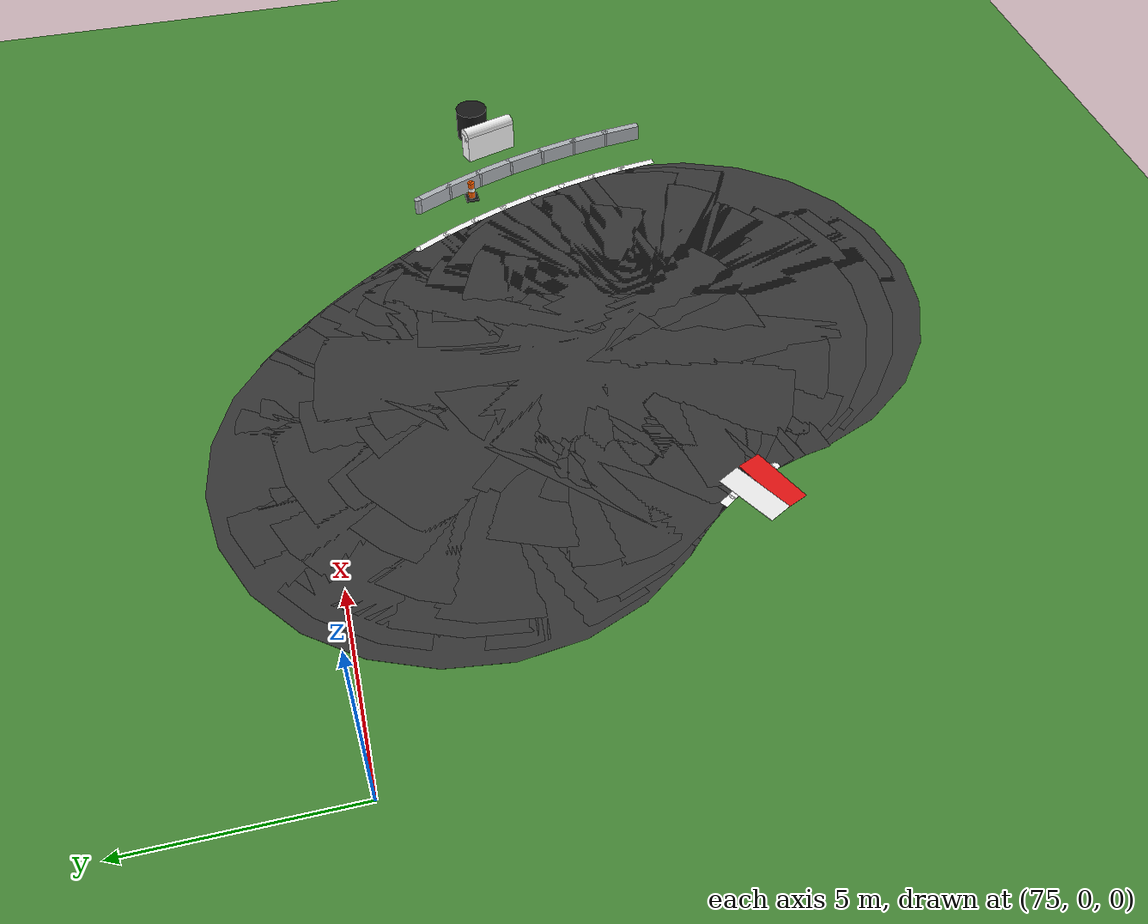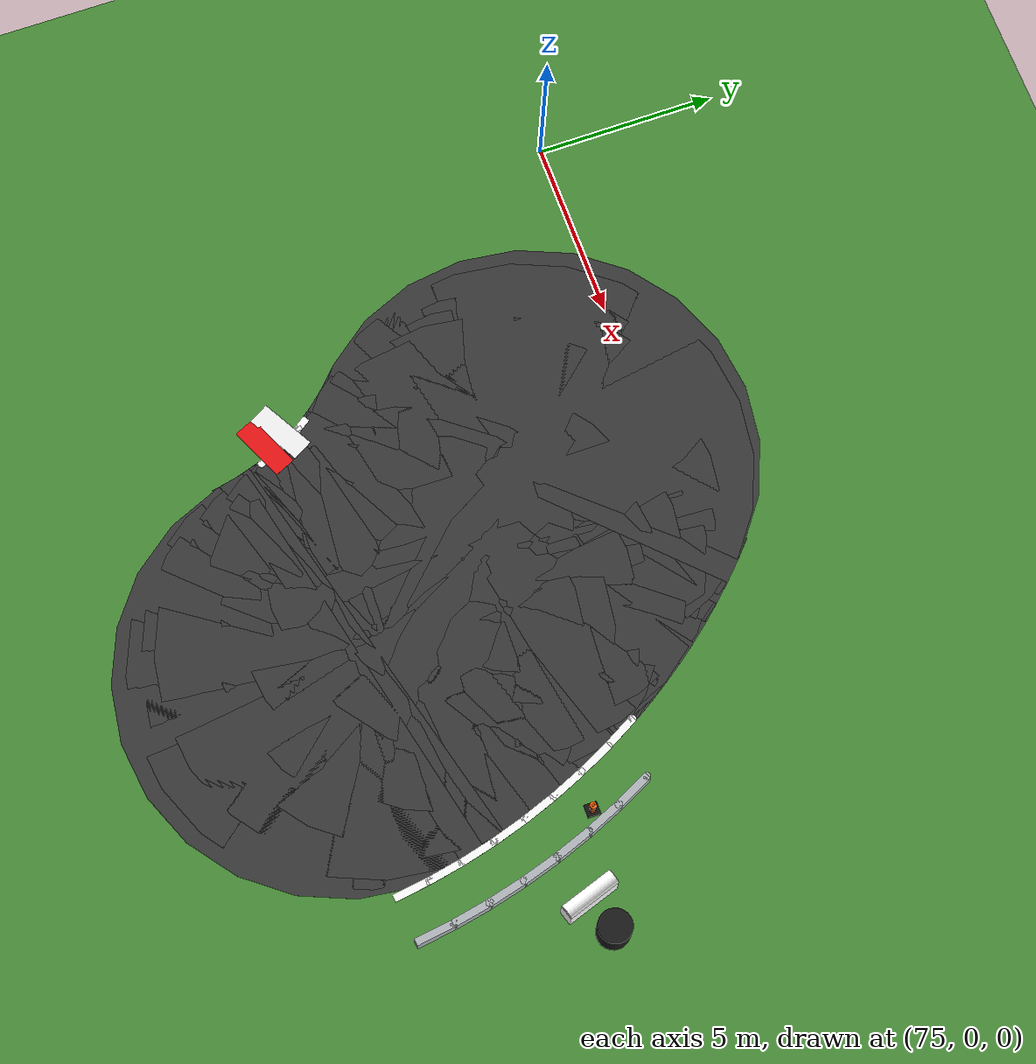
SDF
<sdf version="1.6">
 <world name="sem_silesia_ring_2026">
  <model name="ground_plane">
   <static>true</static>
   <link name="link">
    <collision name="collision">
     <geometry><plane><normal>0 0 1</normal><size>600 600</size></plane></geometry>
     <surface><friction><ode><mu>0.6</mu><mu2>0.6</mu2></ode></friction></surface>
    </collision>
    <visual name="visual">
     <geometry><plane><normal>0 0 1</normal><size>600 600</size></plane></geometry>
     <material><ambient>0.28 0.55 0.22 1</ambient><diffuse>0.28 0.55 0.22 1</diffuse></material>
    </visual>
   </link>
  </model>
  <model name="road_R_s50">
   <static>true</static>
   <pose>87.2703 -10.1149 0.0030 0 0 1.7628</pose>
   <link name="link">
    <visual name="v">
     <geometry><box><size>0.6957 12.0000 0.0060</size></box></geometry>
     <material><ambient>0.22 0.22 0.22 1</ambient><diffuse>0.22 0.22 0.22 1</diffuse></material>
    </visual>
    <collision name="c">
     <geometry><box><size>0.6957 12.0000 0.0060</size></box></geometry>
     <surface><friction><ode><mu>0.9</mu><mu2>0.9</mu2></ode></friction></surface>
    </collision>
   </link>
  </model>
  <model name="road_R_jnt51">
   <static>true</static>
   <pose>87.2268 -9.9011 0.0030 0 0 0</pose>
   <link name="link">
    <visual name="v">
     <geometry><cylinder><radius>6.0000</radius><length>0.0060</length></cylinder></geometry>
     <material><ambient>0.22 0.22 0.22 1</ambient><diffuse>0.22 0.22 0.22 1</diffuse></material>
    </visual>
    <collision name="c">
     <geometry><cylinder><radius>6.0000</radius><length>0.0060</length></cylinder></geometry>
     <surface><friction><ode><mu>0.9</mu><mu2>0.9</mu2></ode></friction></surface>
    </collision>
   </link>
  </model>
  <model name="road_R_s51">
   <static>true</static>
   <pose>87.1796 -9.6881 0.0030 0 0 1.7977</pose>
   <link name="link">
    <visual name="v">
     <geometry><box><size>0.6957 12.0000 0.0060</size></box></geometry>
     <material><ambient>0.22 0.22 0.22 1</ambient><diffuse>0.22 0.22 0.22 1</diffuse></material>
    </visual>
    <collision name="c">
     <geometry><box><size>0.6957 12.0000 0.0060</size></box></geometry>
     <surface><friction><ode><mu>0.9</mu><mu2>0.9</mu2></ode></friction></surface>
    </collision>
   </link>
  </model>
  <model name="road_R_jnt52">
   <static>true</static>
   <pose>87.1287 -9.4760 0.0030 0 0 0</pose>
   <link name="link">
    <visual name="v">
     <geometry><cylinder><radius>6.0000</radius><length>0.0060</length></cylinder></geometry>
     <material><ambient>0.22 0.22 0.22 1</ambient><diffuse>0.22 0.22 0.22 1</diffuse></material>
    </visual>
    <collision name="c">
     <geometry><cylinder><radius>6.0000</radius><length>0.0060</length></cylinder></geometry>
     <surface><friction><ode><mu>0.9</mu><mu2>0.9</mu2></ode></friction></surface>
    </collision>
   </link>
  </model>
  <model name="road_R_s52">
   <static>true</static>
   <pose>87.0741 -9.2648 0.0030 0 0 1.8326</pose>
   <link name="link">
    <visual name="v">
     <geometry><box><size>0.6957 12.0000 0.0060</size></box></geometry>
     <material><ambient>0.22 0.22 0.22 1</ambient><diffuse>0.22 0.22 0.22 1</diffuse></material>
    </visual>
    <collision name="c">
     <geometry><box><size>0.6957 12.0000 0.0060</size></box></geometry>
     <surface><friction><ode><mu>0.9</mu><mu2>0.9</mu2></ode></friction></surface>
    </collision>
   </link>
  </model>
  <model name="road_R_jnt53">
   <static>true</static>
   <pose>87.0158 -9.0545 0.0030 0 0 0</pose>
   <link name="link">
    <visual name="v">
     <geometry><cylinder><radius>6.0000</radius><length>0.0060</length></cylinder></geometry>
     <material><ambient>0.22 0.22 0.22 1</ambient><diffuse>0.22 0.22 0.22 1</diffuse></material>
    </visual>
    <collision name="c">
     <geometry><cylinder><radius>6.0000</radius><length>0.0060</length></cylinder></geometry>
     <surface><friction><ode><mu>0.9</mu><mu2>0.9</mu2></ode></friction></surface>
    </collision>
   </link>
  </model>
  <model name="road_R_s53">
   <static>true</static>
   <pose>86.9538 -8.8454 0.0030 0 0 1.8675</pose>
   <link name="link">
    <visual name="v">
     <geometry><box><size>0.6957 12.0000 0.0060</size></box></geometry>
     <material><ambient>0.22 0.22 0.22 1</ambient><diffuse>0.22 0.22 0.22 1</diffuse></material>
    </visual>
    <collision name="c">
     <geometry><box><size>0.6957 12.0000 0.0060</size></box></geometry>
     <surface><friction><ode><mu>0.9</mu><mu2>0.9</mu2></ode></friction></surface>
    </collision>
   </link>
  </model>
  <model name="road_R_jnt54">
   <static>true</static>
   <pose>86.8882 -8.6373 0.0030 0 0 0</pose>
   <link name="link">
    <visual name="v">
     <geometry><cylinder><radius>6.0000</radius><length>0.0060</length></cylinder></geometry>
     <material><ambient>0.22 0.22 0.22 1</ambient><diffuse>0.22 0.22 0.22 1</diffuse></material>
    </visual>
    <collision name="c">
     <geometry><cylinder><radius>6.0000</radius><length>0.0060</length></cylinder></geometry>
     <surface><friction><ode><mu>0.9</mu><mu2>0.9</mu2></ode></friction></surface>
    </collision>
   </link>
  </model>
  <model name="road_R_s54">
   <static>true</static>
   <pose>86.8190 -8.4304 0.0030 0 0 1.9024</pose>
   <link name="link">
    <visual name="v">
     <geometry><box><size>0.6957 12.0000 0.0060</size></box></geometry>
     <material><ambient>0.22 0.22 0.22 1</ambient><diffuse>0.22 0.22 0.22 1</diffuse></material>
    </visual>
    <collision name="c">
     <geometry><box><size>0.6957 12.0000 0.0060</size></box></geometry>
     <surface><friction><ode><mu>0.9</mu><mu2>0.9</mu2></ode></friction></surface>
    </collision>
   </link>
  </model>
  <model name="road_R_jnt55">
   <static>true</static>
   <pose>86.7462 -8.2247 0.0030 0 0 0</pose>
   <link name="link">
    <visual name="v">
     <geometry><cylinder><radius>6.0000</radius><length>0.0060</length></cylinder></geometry>
     <material><ambient>0.22 0.22 0.22 1</ambient><diffuse>0.22 0.22 0.22 1</diffuse></material>
    </visual>
    <collision name="c">
     <geometry><cylinder><radius>6.0000</radius><length>0.0060</length></cylinder></geometry>
     <surface><friction><ode><mu>0.9</mu><mu2>0.9</mu2></ode></friction></surface>
    </collision>
   </link>
  </model>
  <model name="road_R_s55">
   <static>true</static>
   <pose>86.6698 -8.0204 0.0030 0 0 1.9373</pose>
   <link name="link">
    <visual name="v">
     <geometry><box><size>0.6957 12.0000 0.0060</size></box></geometry>
     <material><ambient>0.22 0.22 0.22 1</ambient><diffuse>0.22 0.22 0.22 1</diffuse></material>
    </visual>
    <collision name="c">
     <geometry><box><size>0.6957 12.0000 0.0060</size></box></geometry>
     <surface><friction><ode><mu>0.9</mu><mu2>0.9</mu2></ode></friction></surface>
    </collision>
   </link>
  </model>
  <model name="road_R_jnt56">
   <static>true</static>
   <pose>86.5898 -7.8174 0.0030 0 0 0</pose>
   <link name="link">
    <visual name="v">
     <geometry><cylinder><radius>6.0000</radius><length>0.0060</length></cylinder></geometry>
     <material><ambient>0.22 0.22 0.22 1</ambient><diffuse>0.22 0.22 0.22 1</diffuse></material>
    </visual>
    <collision name="c">
     <geometry><cylinder><radius>6.0000</radius><length>0.0060</length></cylinder></geometry>
     <surface><friction><ode><mu>0.9</mu><mu2>0.9</mu2></ode></friction></surface>
    </collision>
   </link>
  </model>
  <model name="road_R_s56">
   <static>true</static>
   <pose>86.5063 -7.6159 0.0030 0 0 1.9722</pose>
   <link name="link">
    <visual name="v">
     <geometry><box><size>0.6957 12.0000 0.0060</size></box></geometry>
     <material><ambient>0.22 0.22 0.22 1</ambient><diffuse>0.22 0.22 0.22 1</diffuse></material>
    </visual>
    <collision name="c">
     <geometry><box><size>0.6957 12.0000 0.0060</size></box></geometry>
     <surface><friction><ode><mu>0.9</mu><mu2>0.9</mu2></ode></friction></surface>
    </collision>
   </link>
  </model>
  <model name="road_R_jnt57">
   <static>true</static>
   <pose>86.4193 -7.4158 0.0030 0 0 0</pose>
   <link name="link">
    <visual name="v">
     <geometry><cylinder><radius>6.0000</radius><length>0.0060</length></cylinder></geometry>
     <material><ambient>0.22 0.22 0.22 1</ambient><diffuse>0.22 0.22 0.22 1</diffuse></material>
    </visual>
    <collision name="c">
     <geometry><cylinder><radius>6.0000</radius><length>0.0060</length></cylinder></geometry>
     <surface><friction><ode><mu>0.9</mu><mu2>0.9</mu2></ode></friction></surface>
    </collision>
   </link>
  </model>
  <model name="road_R_s57">
   <static>true</static>
   <pose>86.3288 -7.2173 0.0030 0 0 2.0071</pose>
   <link name="link">
    <visual name="v">
     <geometry><box><size>0.6957 12.0000 0.0060</size></box></geometry>
     <material><ambient>0.22 0.22 0.22 1</ambient><diffuse>0.22 0.22 0.22 1</diffuse></material>
    </visual>
    <collision name="c">
     <geometry><box><size>0.6957 12.0000 0.0060</size></box></geometry>
     <surface><friction><ode><mu>0.9</mu><mu2>0.9</mu2></ode></friction></surface>
    </collision>
   </link>
  </model>
  <model name="road_R_jnt58">
   <static>true</static>
   <pose>86.2349 -7.0204 0.0030 0 0 0</pose>
   <link name="link">
    <visual name="v">
     <geometry><cylinder><radius>6.0000</radius><length>0.0060</length></cylinder></geometry>
     <material><ambient>0.22 0.22 0.22 1</ambient><diffuse>0.22 0.22 0.22 1</diffuse></material>
    </visual>
    <collision name="c">
     <geometry><cylinder><radius>6.0000</radius><length>0.0060</length></cylinder></geometry>
     <surface><friction><ode><mu>0.9</mu><mu2>0.9</mu2></ode></friction></surface>
    </collision>
   </link>
  </model>
  <model name="road_R_s58">
   <static>true</static>
   <pose>86.1376 -6.8251 0.0030 0 0 2.0420</pose>
   <link name="link">
    <visual name="v">
     <geometry><box><size>0.6957 12.0000 0.0060</size></box></geometry>
     <material><ambient>0.22 0.22 0.22 1</ambient><diffuse>0.22 0.22 0.22 1</diffuse></material>
    </visual>
    <collision name="c">
     <geometry><box><size>0.6957 12.0000 0.0060</size></box></geometry>
     <surface><friction><ode><mu>0.9</mu><mu2>0.9</mu2></ode></friction></surface>
    </collision>
   </link>
  </model>
  <model name="road_R_jnt59">
   <static>true</static>
   <pose>86.0368 -6.6316 0.0030 0 0 0</pose>
   <link name="link">
    <visual name="v">
     <geometry><cylinder><radius>6.0000</radius><length>0.0060</length></cylinder></geometry>
     <material><ambient>0.22 0.22 0.22 1</ambient><diffuse>0.22 0.22 0.22 1</diffuse></material>
    </visual>
    <collision name="c">
     <geometry><cylinder><radius>6.0000</radius><length>0.0060</length></cylinder></geometry>
     <surface><friction><ode><mu>0.9</mu><mu2>0.9</mu2></ode></friction></surface>
    </collision>
   </link>
  </model>
  <model name="road_R_s59">
   <static>true</static>
   <pose>85.9327 -6.4399 0.0030 0 0 2.0769</pose>
   <link name="link">
    <visual name="v">
     <geometry><box><size>0.6957 12.0000 0.0060</size></box></geometry>
     <material><ambient>0.22 0.22 0.22 1</ambient><diffuse>0.22 0.22 0.22 1</diffuse></material>
    </visual>
    <collision name="c">
     <geometry><box><size>0.6957 12.0000 0.0060</size></box></geometry>
     <surface><friction><ode><mu>0.9</mu><mu2>0.9</mu2></ode></friction></surface>
    </collision>
   </link>
  </model>
  <model name="road_R_jnt60">
   <static>true</static>
   <pose>85.8253 -6.2500 0.0030 0 0 0</pose>
   <link name="link">
    <visual name="v">
     <geometry><cylinder><radius>6.0000</radius><length>0.0060</length></cylinder></geometry>
     <material><ambient>0.22 0.22 0.22 1</ambient><diffuse>0.22 0.22 0.22 1</diffuse></material>
    </visual>
    <collision name="c">
     <geometry><cylinder><radius>6.0000</radius><length>0.0060</length></cylinder></geometry>
     <surface><friction><ode><mu>0.9</mu><mu2>0.9</mu2></ode></friction></surface>
    </collision>
   </link>
  </model>
  <model name="road_R_s60">
   <static>true</static>
   <pose>85.7146 -6.0620 0.0030 0 0 2.1118</pose>
   <link name="link">
    <visual name="v">
     <geometry><box><size>0.6957 12.0000 0.0060</size></box></geometry>
     <material><ambient>0.22 0.22 0.22 1</ambient><diffuse>0.22 0.22 0.22 1</diffuse></material>
    </visual>
    <collision name="c">
     <geometry><box><size>0.6957 12.0000 0.0060</size></box></geometry>
     <surface><friction><ode><mu>0.9</mu><mu2>0.9</mu2></ode></friction></surface>
    </collision>
   </link>
  </model>
  <model name="road_R_jnt61">
   <static>true</static>
   <pose>85.6006 -5.8760 0.0030 0 0 0</pose>
   <link name="link">
    <visual name="v">
     <geometry><cylinder><radius>6.0000</radius><length>0.0060</length></cylinder></geometry>
     <material><ambient>0.22 0.22 0.22 1</ambient><diffuse>0.22 0.22 0.22 1</diffuse></material>
    </visual>
    <collision name="c">
     <geometry><cylinder><radius>6.0000</radius><length>0.0060</length></cylinder></geometry>
     <surface><friction><ode><mu>0.9</mu><mu2>0.9</mu2></ode></friction></surface>
    </collision>
   </link>
  </model>
  <model name="road_R_s61">
   <static>true</static>
   <pose>85.4834 -5.6920 0.0030 0 0 2.1468</pose>
   <link name="link">
    <visual name="v">
     <geometry><box><size>0.6957 12.0000 0.0060</size></box></geometry>
     <material><ambient>0.22 0.22 0.22 1</ambient><diffuse>0.22 0.22 0.22 1</diffuse></material>
    </visual>
    <collision name="c">
     <geometry><box><size>0.6957 12.0000 0.0060</size></box></geometry>
     <surface><friction><ode><mu>0.9</mu><mu2>0.9</mu2></ode></friction></surface>
    </collision>
   </link>
  </model>
  <model name="road_R_jnt62">
   <static>true</static>
   <pose>85.3630 -5.5101 0.0030 0 0 0</pose>
   <link name="link">
    <visual name="v">
     <geometry><cylinder><radius>6.0000</radius><length>0.0060</length></cylinder></geometry>
     <material><ambient>0.22 0.22 0.22 1</ambient><diffuse>0.22 0.22 0.22 1</diffuse></material>
    </visual>
    <collision name="c">
     <geometry><cylinder><radius>6.0000</radius><length>0.0060</length></cylinder></geometry>
     <surface><friction><ode><mu>0.9</mu><mu2>0.9</mu2></ode></friction></surface>
    </collision>
   </link>
  </model>
  <model name="road_R_s62">
   <static>true</static>
   <pose>85.2394 -5.3303 0.0030 0 0 2.1817</pose>
   <link name="link">
    <visual name="v">
     <geometry><box><size>0.6957 12.0000 0.0060</size></box></geometry>
     <material><ambient>0.22 0.22 0.22 1</ambient><diffuse>0.22 0.22 0.22 1</diffuse></material>
    </visual>
    <collision name="c">
     <geometry><box><size>0.6957 12.0000 0.0060</size></box></geometry>
     <surface><friction><ode><mu>0.9</mu><mu2>0.9</mu2></ode></friction></surface>
    </collision>
   </link>
  </model>
  <model name="road_R_jnt63">
   <static>true</static>
   <pose>85.1127 -5.1527 0.0030 0 0 0</pose>
   <link name="link">
    <visual name="v">
     <geometry><cylinder><radius>6.0000</radius><length>0.0060</length></cylinder></geometry>
     <material><ambient>0.22 0.22 0.22 1</ambient><diffuse>0.22 0.22 0.22 1</diffuse></material>
    </visual>
    <collision name="c">
     <geometry><cylinder><radius>6.0000</radius><length>0.0060</length></cylinder></geometry>
     <surface><friction><ode><mu>0.9</mu><mu2>0.9</mu2></ode></friction></surface>
    </collision>
   </link>
  </model>
  <model name="road_R_s63">
   <static>true</static>
   <pose>84.9829 -4.9773 0.0030 0 0 2.2166</pose>
   <link name="link">
    <visual name="v">
     <geometry><box><size>0.6957 12.0000 0.0060</size></box></geometry>
     <material><ambient>0.22 0.22 0.22 1</ambient><diffuse>0.22 0.22 0.22 1</diffuse></material>
    </visual>
    <collision name="c">
     <geometry><box><size>0.6957 12.0000 0.0060</size></box></geometry>
     <surface><friction><ode><mu>0.9</mu><mu2>0.9</mu2></ode></friction></surface>
    </collision>
   </link>
  </model>
  <model name="road_R_jnt64">
   <static>true</static>
   <pose>84.8501 -4.8042 0.0030 0 0 0</pose>
   <link name="link">
    <visual name="v">
     <geometry><cylinder><radius>6.0000</radius><length>0.0060</length></cylinder></geometry>
     <material><ambient>0.22 0.22 0.22 1</ambient><diffuse>0.22 0.22 0.22 1</diffuse></material>
    </visual>
    <collision name="c">
     <geometry><cylinder><radius>6.0000</radius><length>0.0060</length></cylinder></geometry>
     <surface><friction><ode><mu>0.9</mu><mu2>0.9</mu2></ode></friction></surface>
    </collision>
   </link>
  </model>
  <model name="road_R_s64">
   <static>true</static>
   <pose>84.7143 -4.6335 0.0030 0 0 2.2515</pose>
   <link name="link">
    <visual name="v">
     <geometry><box><size>0.6957 12.0000 0.0060</size></box></geometry>
     <material><ambient>0.22 0.22 0.22 1</ambient><diffuse>0.22 0.22 0.22 1</diffuse></material>
    </visual>
    <collision name="c">
     <geometry><box><size>0.6957 12.0000 0.0060</size></box></geometry>
     <surface><friction><ode><mu>0.9</mu><mu2>0.9</mu2></ode></friction></surface>
    </collision>
   </link>
  </model>
  <model name="road_R_jnt65">
   <static>true</static>
   <pose>84.5756 -4.4652 0.0030 0 0 0</pose>
   <link name="link">
    <visual name="v">
     <geometry><cylinder><radius>6.0000</radius><length>0.0060</length></cylinder></geometry>
     <material><ambient>0.22 0.22 0.22 1</ambient><diffuse>0.22 0.22 0.22 1</diffuse></material>
    </visual>
    <collision name="c">
     <geometry><cylinder><radius>6.0000</radius><length>0.0060</length></cylinder></geometry>
     <surface><friction><ode><mu>0.9</mu><mu2>0.9</mu2></ode></friction></surface>
    </collision>
   </link>
  </model>
  <model name="road_R_s65">
   <static>true</static>
   <pose>84.4339 -4.2993 0.0030 0 0 2.2864</pose>
   <link name="link">
    <visual name="v">
     <geometry><box><size>0.6957 12.0000 0.0060</size></box></geometry>
     <material><ambient>0.22 0.22 0.22 1</ambient><diffuse>0.22 0.22 0.22 1</diffuse></material>
    </visual>
    <collision name="c">
     <geometry><box><size>0.6957 12.0000 0.0060</size></box></geometry>
     <surface><friction><ode><mu>0.9</mu><mu2>0.9</mu2></ode></friction></surface>
    </collision>
   </link>
  </model>
  <model name="road_R_jnt66">
   <static>true</static>
   <pose>84.2893 -4.1359 0.0030 0 0 0</pose>
   <link name="link">
    <visual name="v">
     <geometry><cylinder><radius>6.0000</radius><length>0.0060</length></cylinder></geometry>
     <material><ambient>0.22 0.22 0.22 1</ambient><diffuse>0.22 0.22 0.22 1</diffuse></material>
    </visual>
    <collision name="c">
     <geometry><cylinder><radius>6.0000</radius><length>0.0060</length></cylinder></geometry>
     <surface><friction><ode><mu>0.9</mu><mu2>0.9</mu2></ode></friction></surface>
    </collision>
   </link>
  </model>
  <model name="road_R_s66">
   <static>true</static>
   <pose>84.1419 -3.9750 0.0030 0 0 2.3213</pose>
   <link name="link">
    <visual name="v">
     <geometry><box><size>0.6957 12.0000 0.0060</size></box></geometry>
     <material><ambient>0.22 0.22 0.22 1</ambient><diffuse>0.22 0.22 0.22 1</diffuse></material>
    </visual>
    <collision name="c">
     <geometry><box><size>0.6957 12.0000 0.0060</size></box></geometry>
     <surface><friction><ode><mu>0.9</mu><mu2>0.9</mu2></ode></friction></surface>
    </collision>
   </link>
  </model>
  <model name="road_R_jnt67">
   <static>true</static>
   <pose>83.9917 -3.8168 0.0030 0 0 0</pose>
   <link name="link">
    <visual name="v">
     <geometry><cylinder><radius>6.0000</radius><length>0.0060</length></cylinder></geometry>
     <material><ambient>0.22 0.22 0.22 1</ambient><diffuse>0.22 0.22 0.22 1</diffuse></material>
    </visual>
    <collision name="c">
     <geometry><cylinder><radius>6.0000</radius><length>0.0060</length></cylinder></geometry>
     <surface><friction><ode><mu>0.9</mu><mu2>0.9</mu2></ode></friction></surface>
    </collision>
   </link>
  </model>
  <model name="road_R_s67">
   <static>true</static>
   <pose>83.8388 -3.6612 0.0030 0 0 2.3562</pose>
   <link name="link">
    <visual name="v">
     <geometry><box><size>0.6957 12.0000 0.0060</size></box></geometry>
     <material><ambient>0.22 0.22 0.22 1</ambient><diffuse>0.22 0.22 0.22 1</diffuse></material>
    </visual>
    <collision name="c">
     <geometry><box><size>0.6957 12.0000 0.0060</size></box></geometry>
     <surface><friction><ode><mu>0.9</mu><mu2>0.9</mu2></ode></friction></surface>
    </collision>
   </link>
  </model>
  <model name="road_R_jnt68">
   <static>true</static>
   <pose>83.6832 -3.5083 0.0030 0 0 0</pose>
   <link name="link">
    <visual name="v">
     <geometry><cylinder><radius>6.0000</radius><length>0.0060</length></cylinder></geometry>
     <material><ambient>0.22 0.22 0.22 1</ambient><diffuse>0.22 0.22 0.22 1</diffuse></material>
    </visual>
    <collision name="c">
     <geometry><cylinder><radius>6.0000</radius><length>0.0060</length></cylinder></geometry>
     <surface><friction><ode><mu>0.9</mu><mu2>0.9</mu2></ode></friction></surface>
    </collision>
   </link>
  </model>
  <model name="road_R_s68">
   <static>true</static>
   <pose>83.5250 -3.3581 0.0030 0 0 2.3911</pose>
   <link name="link">
    <visual name="v">
     <geometry><box><size>0.6957 12.0000 0.0060</size></box></geometry>
     <material><ambient>0.22 0.22 0.22 1</ambient><diffuse>0.22 0.22 0.22 1</diffuse></material>
    </visual>
    <collision name="c">
     <geometry><box><size>0.6957 12.0000 0.0060</size></box></geometry>
     <surface><friction><ode><mu>0.9</mu><mu2>0.9</mu2></ode></friction></surface>
    </collision>
   </link>
  </model>
  <model name="road_R_jnt69">
   <static>true</static>
   <pose>83.3641 -3.2107 0.0030 0 0 0</pose>
   <link name="link">
    <visual name="v">
     <geometry><cylinder><radius>6.0000</radius><length>0.0060</length></cylinder></geometry>
     <material><ambient>0.22 0.22 0.22 1</ambient><diffuse>0.22 0.22 0.22 1</diffuse></material>
    </visual>
    <collision name="c">
     <geometry><cylinder><radius>6.0000</radius><length>0.0060</length></cylinder></geometry>
     <surface><friction><ode><mu>0.9</mu><mu2>0.9</mu2></ode></friction></surface>
    </collision>
   </link>
  </model>
  <model name="wl_Ro_s32">
   <static>true</static>
   <pose>93.2426 -10.0983 0.0050 0 0 1.7017</pose>
   <link name="link">
    <visual name="v">
     <geometry><box><size>1.0185 0.2000 0.0040</size></box></geometry>
     <material><ambient>1 1 1 1</ambient><diffuse>1 1 1 1</diffuse></material>
    </visual>
    <collision name="c">
     <geometry><box><size>1.0185 0.2000 0.0040</size></box></geometry>
     <surface><friction><ode><mu>0.9</mu><mu2>0.9</mu2></ode></friction></surface>
    </collision>
   </link>
  </model>
  <model name="wl_Ro_jnt33">
   <static>true</static>
   <pose>93.1735 -9.6216 0.0050 0 0 0</pose>
   <link name="link">
    <visual name="v">
     <geometry><cylinder><radius>0.1000</radius><length>0.0040</length></cylinder></geometry>
     <material><ambient>1 1 1 1</ambient><diffuse>1 1 1 1</diffuse></material>
    </visual>
    <collision name="c">
     <geometry><cylinder><radius>0.1000</radius><length>0.0040</length></cylinder></geometry>
     <surface><friction><ode><mu>0.9</mu><mu2>0.9</mu2></ode></friction></surface>
    </collision>
   </link>
  </model>
  <model name="wl_Ro_s33">
   <static>true</static>
   <pose>93.0919 -9.1469 0.0050 0 0 1.7541</pose>
   <link name="link">
    <visual name="v">
     <geometry><box><size>1.0185 0.2000 0.0040</size></box></geometry>
     <material><ambient>1 1 1 1</ambient><diffuse>1 1 1 1</diffuse></material>
    </visual>
    <collision name="c">
     <geometry><box><size>1.0185 0.2000 0.0040</size></box></geometry>
     <surface><friction><ode><mu>0.9</mu><mu2>0.9</mu2></ode></friction></surface>
    </collision>
   </link>
  </model>
  <model name="wl_Ro_jnt34">
   <static>true</static>
   <pose>92.9979 -8.6744 0.0050 0 0 0</pose>
   <link name="link">
    <visual name="v">
     <geometry><cylinder><radius>0.1000</radius><length>0.0040</length></cylinder></geometry>
     <material><ambient>1 1 1 1</ambient><diffuse>1 1 1 1</diffuse></material>
    </visual>
    <collision name="c">
     <geometry><cylinder><radius>0.1000</radius><length>0.0040</length></cylinder></geometry>
     <surface><friction><ode><mu>0.9</mu><mu2>0.9</mu2></ode></friction></surface>
    </collision>
   </link>
  </model>
  <model name="wl_Ro_s34">
   <static>true</static>
   <pose>92.8916 -8.2046 0.0050 0 0 1.8064</pose>
   <link name="link">
    <visual name="v">
     <geometry><box><size>1.0185 0.2000 0.0040</size></box></geometry>
     <material><ambient>1 1 1 1</ambient><diffuse>1 1 1 1</diffuse></material>
    </visual>
    <collision name="c">
     <geometry><box><size>1.0185 0.2000 0.0040</size></box></geometry>
     <surface><friction><ode><mu>0.9</mu><mu2>0.9</mu2></ode></friction></surface>
    </collision>
   </link>
  </model>
  <model name="wl_Ro_jnt35">
   <static>true</static>
   <pose>92.7730 -7.7377 0.0050 0 0 0</pose>
   <link name="link">
    <visual name="v">
     <geometry><cylinder><radius>0.1000</radius><length>0.0040</length></cylinder></geometry>
     <material><ambient>1 1 1 1</ambient><diffuse>1 1 1 1</diffuse></material>
    </visual>
    <collision name="c">
     <geometry><cylinder><radius>0.1000</radius><length>0.0040</length></cylinder></geometry>
     <surface><friction><ode><mu>0.9</mu><mu2>0.9</mu2></ode></friction></surface>
    </collision>
   </link>
  </model>
  <model name="wl_Ro_s35">
   <static>true</static>
   <pose>92.6423 -7.2741 0.0050 0 0 1.8588</pose>
   <link name="link">
    <visual name="v">
     <geometry><box><size>1.0185 0.2000 0.0040</size></box></geometry>
     <material><ambient>1 1 1 1</ambient><diffuse>1 1 1 1</diffuse></material>
    </visual>
    <collision name="c">
     <geometry><box><size>1.0185 0.2000 0.0040</size></box></geometry>
     <surface><friction><ode><mu>0.9</mu><mu2>0.9</mu2></ode></friction></surface>
    </collision>
   </link>
  </model>
  <model name="wl_Ro_jnt36">
   <static>true</static>
   <pose>92.4994 -6.8141 0.0050 0 0 0</pose>
   <link name="link">
    <visual name="v">
     <geometry><cylinder><radius>0.1000</radius><length>0.0040</length></cylinder></geometry>
     <material><ambient>1 1 1 1</ambient><diffuse>1 1 1 1</diffuse></material>
    </visual>
    <collision name="c">
     <geometry><cylinder><radius>0.1000</radius><length>0.0040</length></cylinder></geometry>
     <surface><friction><ode><mu>0.9</mu><mu2>0.9</mu2></ode></friction></surface>
    </collision>
   </link>
  </model>
  <model name="wl_Ro_s36">
   <static>true</static>
   <pose>92.3446 -6.3580 0.0050 0 0 1.9111</pose>
   <link name="link">
    <visual name="v">
     <geometry><box><size>1.0185 0.2000 0.0040</size></box></geometry>
     <material><ambient>1 1 1 1</ambient><diffuse>1 1 1 1</diffuse></material>
    </visual>
    <collision name="c">
     <geometry><box><size>1.0185 0.2000 0.0040</size></box></geometry>
     <surface><friction><ode><mu>0.9</mu><mu2>0.9</mu2></ode></friction></surface>
    </collision>
   </link>
  </model>
  <model name="wl_Ro_jnt37">
   <static>true</static>
   <pose>92.1779 -5.9060 0.0050 0 0 0</pose>
   <link name="link">
    <visual name="v">
     <geometry><cylinder><radius>0.1000</radius><length>0.0040</length></cylinder></geometry>
     <material><ambient>1 1 1 1</ambient><diffuse>1 1 1 1</diffuse></material>
    </visual>
    <collision name="c">
     <geometry><cylinder><radius>0.1000</radius><length>0.0040</length></cylinder></geometry>
     <surface><friction><ode><mu>0.9</mu><mu2>0.9</mu2></ode></friction></surface>
    </collision>
   </link>
  </model>
  <model name="wl_Ro_s37">
   <static>true</static>
   <pose>91.9994 -5.4586 0.0050 0 0 1.9635</pose>
   <link name="link">
    <visual name="v">
     <geometry><box><size>1.0185 0.2000 0.0040</size></box></geometry>
     <material><ambient>1 1 1 1</ambient><diffuse>1 1 1 1</diffuse></material>
    </visual>
    <collision name="c">
     <geometry><box><size>1.0185 0.2000 0.0040</size></box></geometry>
     <surface><friction><ode><mu>0.9</mu><mu2>0.9</mu2></ode></friction></surface>
    </collision>
   </link>
  </model>
  <model name="wl_Ro_jnt38">
   <static>true</static>
   <pose>91.8092 -5.0160 0.0050 0 0 0</pose>
   <link name="link">
    <visual name="v">
     <geometry><cylinder><radius>0.1000</radius><length>0.0040</length></cylinder></geometry>
     <material><ambient>1 1 1 1</ambient><diffuse>1 1 1 1</diffuse></material>
    </visual>
    <collision name="c">
     <geometry><cylinder><radius>0.1000</radius><length>0.0040</length></cylinder></geometry>
     <surface><friction><ode><mu>0.9</mu><mu2>0.9</mu2></ode></friction></surface>
    </collision>
   </link>
  </model>
  <model name="wl_Ro_s38">
   <static>true</static>
   <pose>91.6076 -4.5786 0.0050 0 0 2.0159</pose>
   <link name="link">
    <visual name="v">
     <geometry><box><size>1.0185 0.2000 0.0040</size></box></geometry>
     <material><ambient>1 1 1 1</ambient><diffuse>1 1 1 1</diffuse></material>
    </visual>
    <collision name="c">
     <geometry><box><size>1.0185 0.2000 0.0040</size></box></geometry>
     <surface><friction><ode><mu>0.9</mu><mu2>0.9</mu2></ode></friction></surface>
    </collision>
   </link>
  </model>
  <model name="wl_Ro_jnt39">
   <static>true</static>
   <pose>91.3945 -4.1466 0.0050 0 0 0</pose>
   <link name="link">
    <visual name="v">
     <geometry><cylinder><radius>0.1000</radius><length>0.0040</length></cylinder></geometry>
     <material><ambient>1 1 1 1</ambient><diffuse>1 1 1 1</diffuse></material>
    </visual>
    <collision name="c">
     <geometry><cylinder><radius>0.1000</radius><length>0.0040</length></cylinder></geometry>
     <surface><friction><ode><mu>0.9</mu><mu2>0.9</mu2></ode></friction></surface>
    </collision>
   </link>
  </model>
  <model name="wl_Ro_s39">
   <static>true</static>
   <pose>91.1702 -3.7203 0.0050 0 0 2.0682</pose>
   <link name="link">
    <visual name="v">
     <geometry><box><size>1.0185 0.2000 0.0040</size></box></geometry>
     <material><ambient>1 1 1 1</ambient><diffuse>1 1 1 1</diffuse></material>
    </visual>
    <collision name="c">
     <geometry><box><size>1.0185 0.2000 0.0040</size></box></geometry>
     <surface><friction><ode><mu>0.9</mu><mu2>0.9</mu2></ode></friction></surface>
    </collision>
   </link>
  </model>
  <model name="wl_Ro_jnt40">
   <static>true</static>
   <pose>90.9349 -3.3000 0.0050 0 0 0</pose>
   <link name="link">
    <visual name="v">
     <geometry><cylinder><radius>0.1000</radius><length>0.0040</length></cylinder></geometry>
     <material><ambient>1 1 1 1</ambient><diffuse>1 1 1 1</diffuse></material>
    </visual>
    <collision name="c">
     <geometry><cylinder><radius>0.1000</radius><length>0.0040</length></cylinder></geometry>
     <surface><friction><ode><mu>0.9</mu><mu2>0.9</mu2></ode></friction></surface>
    </collision>
   </link>
  </model>
  <model name="wl_Ri_jnt37">
   <static>true</static>
   <pose>81.1616 -10.1348 0.0050 0 0 0</pose>
   <link name="link">
    <visual name="v">
     <geometry><cylinder><radius>0.1000</radius><length>0.0040</length></cylinder></geometry>
     <material><ambient>1 1 1 1</ambient><diffuse>1 1 1 1</diffuse></material>
    </visual>
    <collision name="c">
     <geometry><cylinder><radius>0.1000</radius><length>0.0040</length></cylinder></geometry>
     <surface><friction><ode><mu>0.9</mu><mu2>0.9</mu2></ode></friction></surface>
    </collision>
   </link>
  </model>
  <model name="wl_Ri_s37">
   <static>true</static>
   <pose>81.0976 -9.9743 0.0050 0 0 1.9635</pose>
   <link name="link">
    <visual name="v">
     <geometry><box><size>0.4008 0.2000 0.0040</size></box></geometry>
     <material><ambient>1 1 1 1</ambient><diffuse>1 1 1 1</diffuse></material>
    </visual>
    <collision name="c">
     <geometry><box><size>0.4008 0.2000 0.0040</size></box></geometry>
     <surface><friction><ode><mu>0.9</mu><mu2>0.9</mu2></ode></friction></surface>
    </collision>
   </link>
  </model>
  <model name="wl_Ri_jnt38">
   <static>true</static>
   <pose>81.0294 -9.8155 0.0050 0 0 0</pose>
   <link name="link">
    <visual name="v">
     <geometry><cylinder><radius>0.1000</radius><length>0.0040</length></cylinder></geometry>
     <material><ambient>1 1 1 1</ambient><diffuse>1 1 1 1</diffuse></material>
    </visual>
    <collision name="c">
     <geometry><cylinder><radius>0.1000</radius><length>0.0040</length></cylinder></geometry>
     <surface><friction><ode><mu>0.9</mu><mu2>0.9</mu2></ode></friction></surface>
    </collision>
   </link>
  </model>
  <model name="wl_Ri_s38">
   <static>true</static>
   <pose>80.9571 -9.6586 0.0050 0 0 2.0159</pose>
   <link name="link">
    <visual name="v">
     <geometry><box><size>0.4008 0.2000 0.0040</size></box></geometry>
     <material><ambient>1 1 1 1</ambient><diffuse>1 1 1 1</diffuse></material>
    </visual>
    <collision name="c">
     <geometry><box><size>0.4008 0.2000 0.0040</size></box></geometry>
     <surface><friction><ode><mu>0.9</mu><mu2>0.9</mu2></ode></friction></surface>
    </collision>
   </link>
  </model>
  <model name="wl_Ri_jnt39">
   <static>true</static>
   <pose>80.8806 -9.5037 0.0050 0 0 0</pose>
   <link name="link">
    <visual name="v">
     <geometry><cylinder><radius>0.1000</radius><length>0.0040</length></cylinder></geometry>
     <material><ambient>1 1 1 1</ambient><diffuse>1 1 1 1</diffuse></material>
    </visual>
    <collision name="c">
     <geometry><cylinder><radius>0.1000</radius><length>0.0040</length></cylinder></geometry>
     <surface><friction><ode><mu>0.9</mu><mu2>0.9</mu2></ode></friction></surface>
    </collision>
   </link>
  </model>
  <model name="wl_Ri_s39">
   <static>true</static>
   <pose>80.8002 -9.3508 0.0050 0 0 2.0682</pose>
   <link name="link">
    <visual name="v">
     <geometry><box><size>0.4008 0.2000 0.0040</size></box></geometry>
     <material><ambient>1 1 1 1</ambient><diffuse>1 1 1 1</diffuse></material>
    </visual>
    <collision name="c">
     <geometry><box><size>0.4008 0.2000 0.0040</size></box></geometry>
     <surface><friction><ode><mu>0.9</mu><mu2>0.9</mu2></ode></friction></surface>
    </collision>
   </link>
  </model>
  <model name="wl_Ri_jnt40">
   <static>true</static>
   <pose>80.7158 -9.2000 0.0050 0 0 0</pose>
   <link name="link">
    <visual name="v">
     <geometry><cylinder><radius>0.1000</radius><length>0.0040</length></cylinder></geometry>
     <material><ambient>1 1 1 1</ambient><diffuse>1 1 1 1</diffuse></material>
    </visual>
    <collision name="c">
     <geometry><cylinder><radius>0.1000</radius><length>0.0040</length></cylinder></geometry>
     <surface><friction><ode><mu>0.9</mu><mu2>0.9</mu2></ode></friction></surface>
    </collision>
   </link>
  </model>
  <model name="wl_Ri_s40">
   <static>true</static>
   <pose>80.6274 -9.0515 0.0050 0 0 2.1206</pose>
   <link name="link">
    <visual name="v">
     <geometry><box><size>0.4008 0.2000 0.0040</size></box></geometry>
     <material><ambient>1 1 1 1</ambient><diffuse>1 1 1 1</diffuse></material>
    </visual>
    <collision name="c">
     <geometry><box><size>0.4008 0.2000 0.0040</size></box></geometry>
     <surface><friction><ode><mu>0.9</mu><mu2>0.9</mu2></ode></friction></surface>
    </collision>
   </link>
  </model>
  <model name="wl_Ri_jnt41">
   <static>true</static>
   <pose>80.5352 -8.9054 0.0050 0 0 0</pose>
   <link name="link">
    <visual name="v">
     <geometry><cylinder><radius>0.1000</radius><length>0.0040</length></cylinder></geometry>
     <material><ambient>1 1 1 1</ambient><diffuse>1 1 1 1</diffuse></material>
    </visual>
    <collision name="c">
     <geometry><cylinder><radius>0.1000</radius><length>0.0040</length></cylinder></geometry>
     <surface><friction><ode><mu>0.9</mu><mu2>0.9</mu2></ode></friction></surface>
    </collision>
   </link>
  </model>
  <model name="wl_Ri_s41">
   <static>true</static>
   <pose>80.4392 -8.7617 0.0050 0 0 2.1729</pose>
   <link name="link">
    <visual name="v">
     <geometry><box><size>0.4008 0.2000 0.0040</size></box></geometry>
     <material><ambient>1 1 1 1</ambient><diffuse>1 1 1 1</diffuse></material>
    </visual>
    <collision name="c">
     <geometry><box><size>0.4008 0.2000 0.0040</size></box></geometry>
     <surface><friction><ode><mu>0.9</mu><mu2>0.9</mu2></ode></friction></surface>
    </collision>
   </link>
  </model>
  <model name="kR_in_k14">
   <static>true</static>
   <pose>80.7418 -9.9075 0.0120 0 0 1.9949</pose>
   <link name="link">
    <visual name="v">
     <geometry><box><size>0.6135 1.6000 0.0120</size></box></geometry>
     <material><ambient>0.92 0.08 0.08 1</ambient><diffuse>0.92 0.08 0.08 1</diffuse></material>
    </visual>
    <collision name="c">
     <geometry><box><size>0.6135 1.6000 0.0120</size></box></geometry>
     <surface><friction><ode><mu>0.9</mu><mu2>0.9</mu2></ode></friction></surface>
    </collision>
   </link>
  </model>
  <model name="kR_in_k15">
   <static>true</static>
   <pose>80.4724 -9.3786 0.0120 0 0 2.0892</pose>
   <link name="link">
    <visual name="v">
     <geometry><box><size>0.6135 1.6000 0.0120</size></box></geometry>
     <material><ambient>0.96 0.96 0.96 1</ambient><diffuse>0.96 0.96 0.96 1</diffuse></material>
    </visual>
    <collision name="c">
     <geometry><box><size>0.6135 1.6000 0.0120</size></box></geometry>
     <surface><friction><ode><mu>0.9</mu><mu2>0.9</mu2></ode></friction></surface>
    </collision>
   </link>
  </model>
  <model name="arm_Ro_s32">
   <static>true</static>
   <pose>94.5315 -9.9286 0.2250 0 0 1.7017</pose>
   <link name="link">
    <visual name="v">
     <geometry><box><size>1.0866 0.2000 0.4500</size></box></geometry>
     <material><ambient>0.70 0.72 0.74 1</ambient><diffuse>0.70 0.72 0.74 1</diffuse></material>
    </visual>
    <collision name="c">
     <geometry><box><size>1.0866 0.2000 0.4500</size></box></geometry>
     <surface><friction><ode><mu>0.9</mu><mu2>0.9</mu2></ode></friction></surface>
    </collision>
   </link>
  </model>
  <model name="arm_Ro_jnt33">
   <static>true</static>
   <pose>94.4575 -9.4182 0.2250 0 0 0</pose>
   <link name="link">
    <visual name="v">
     <geometry><cylinder><radius>0.1000</radius><length>0.4500</length></cylinder></geometry>
     <material><ambient>0.70 0.72 0.74 1</ambient><diffuse>0.70 0.72 0.74 1</diffuse></material>
    </visual>
    <collision name="c">
     <geometry><cylinder><radius>0.1000</radius><length>0.4500</length></cylinder></geometry>
     <surface><friction><ode><mu>0.9</mu><mu2>0.9</mu2></ode></friction></surface>
    </collision>
   </link>
  </model>
  <model name="arm_Ro_s33">
   <static>true</static>
   <pose>94.3701 -8.9100 0.2250 0 0 1.7541</pose>
   <link name="link">
    <visual name="v">
     <geometry><box><size>1.0866 0.2000 0.4500</size></box></geometry>
     <material><ambient>0.70 0.72 0.74 1</ambient><diffuse>0.70 0.72 0.74 1</diffuse></material>
    </visual>
    <collision name="c">
     <geometry><box><size>1.0866 0.2000 0.4500</size></box></geometry>
     <surface><friction><ode><mu>0.9</mu><mu2>0.9</mu2></ode></friction></surface>
    </collision>
   </link>
  </model>
  <model name="arm_Ro_jnt34">
   <static>true</static>
   <pose>94.2695 -8.4041 0.2250 0 0 0</pose>
   <link name="link">
    <visual name="v">
     <geometry><cylinder><radius>0.1000</radius><length>0.4500</length></cylinder></geometry>
     <material><ambient>0.70 0.72 0.74 1</ambient><diffuse>0.70 0.72 0.74 1</diffuse></material>
    </visual>
    <collision name="c">
     <geometry><cylinder><radius>0.1000</radius><length>0.4500</length></cylinder></geometry>
     <surface><friction><ode><mu>0.9</mu><mu2>0.9</mu2></ode></friction></surface>
    </collision>
   </link>
  </model>
  <model name="arm_Ro_s34">
   <static>true</static>
   <pose>94.1557 -7.9011 0.2250 0 0 1.8064</pose>
   <link name="link">
    <visual name="v">
     <geometry><box><size>1.0866 0.2000 0.4500</size></box></geometry>
     <material><ambient>0.70 0.72 0.74 1</ambient><diffuse>0.70 0.72 0.74 1</diffuse></material>
    </visual>
    <collision name="c">
     <geometry><box><size>1.0866 0.2000 0.4500</size></box></geometry>
     <surface><friction><ode><mu>0.9</mu><mu2>0.9</mu2></ode></friction></surface>
    </collision>
   </link>
  </model>
  <model name="arm_Ro_jnt35">
   <static>true</static>
   <pose>94.0287 -7.4013 0.2250 0 0 0</pose>
   <link name="link">
    <visual name="v">
     <geometry><cylinder><radius>0.1000</radius><length>0.4500</length></cylinder></geometry>
     <material><ambient>0.70 0.72 0.74 1</ambient><diffuse>0.70 0.72 0.74 1</diffuse></material>
    </visual>
    <collision name="c">
     <geometry><cylinder><radius>0.1000</radius><length>0.4500</length></cylinder></geometry>
     <surface><friction><ode><mu>0.9</mu><mu2>0.9</mu2></ode></friction></surface>
    </collision>
   </link>
  </model>
  <model name="arm_Ro_s35">
   <static>true</static>
   <pose>93.8887 -6.9049 0.2250 0 0 1.8588</pose>
   <link name="link">
    <visual name="v">
     <geometry><box><size>1.0866 0.2000 0.4500</size></box></geometry>
     <material><ambient>0.70 0.72 0.74 1</ambient><diffuse>0.70 0.72 0.74 1</diffuse></material>
    </visual>
    <collision name="c">
     <geometry><box><size>1.0866 0.2000 0.4500</size></box></geometry>
     <surface><friction><ode><mu>0.9</mu><mu2>0.9</mu2></ode></friction></surface>
    </collision>
   </link>
  </model>
  <model name="arm_Ro_jnt36">
   <static>true</static>
   <pose>93.7358 -6.4124 0.2250 0 0 0</pose>
   <link name="link">
    <visual name="v">
     <geometry><cylinder><radius>0.1000</radius><length>0.4500</length></cylinder></geometry>
     <material><ambient>0.70 0.72 0.74 1</ambient><diffuse>0.70 0.72 0.74 1</diffuse></material>
    </visual>
    <collision name="c">
     <geometry><cylinder><radius>0.1000</radius><length>0.4500</length></cylinder></geometry>
     <surface><friction><ode><mu>0.9</mu><mu2>0.9</mu2></ode></friction></surface>
    </collision>
   </link>
  </model>
  <model name="arm_Ro_s36">
   <static>true</static>
   <pose>93.5700 -5.9240 0.2250 0 0 1.9111</pose>
   <link name="link">
    <visual name="v">
     <geometry><box><size>1.0866 0.2000 0.4500</size></box></geometry>
     <material><ambient>0.70 0.72 0.74 1</ambient><diffuse>0.70 0.72 0.74 1</diffuse></material>
    </visual>
    <collision name="c">
     <geometry><box><size>1.0866 0.2000 0.4500</size></box></geometry>
     <surface><friction><ode><mu>0.9</mu><mu2>0.9</mu2></ode></friction></surface>
    </collision>
   </link>
  </model>
  <model name="arm_Ro_jnt37">
   <static>true</static>
   <pose>93.3915 -5.4402 0.2250 0 0 0</pose>
   <link name="link">
    <visual name="v">
     <geometry><cylinder><radius>0.1000</radius><length>0.4500</length></cylinder></geometry>
     <material><ambient>0.70 0.72 0.74 1</ambient><diffuse>0.70 0.72 0.74 1</diffuse></material>
    </visual>
    <collision name="c">
     <geometry><cylinder><radius>0.1000</radius><length>0.4500</length></cylinder></geometry>
     <surface><friction><ode><mu>0.9</mu><mu2>0.9</mu2></ode></friction></surface>
    </collision>
   </link>
  </model>
  <model name="arm_Ro_s37">
   <static>true</static>
   <pose>93.2004 -4.9611 0.2250 0 0 1.9635</pose>
   <link name="link">
    <visual name="v">
     <geometry><box><size>1.0866 0.2000 0.4500</size></box></geometry>
     <material><ambient>0.70 0.72 0.74 1</ambient><diffuse>0.70 0.72 0.74 1</diffuse></material>
    </visual>
    <collision name="c">
     <geometry><box><size>1.0866 0.2000 0.4500</size></box></geometry>
     <surface><friction><ode><mu>0.9</mu><mu2>0.9</mu2></ode></friction></surface>
    </collision>
   </link>
  </model>
  <model name="arm_Ro_jnt38">
   <static>true</static>
   <pose>92.9968 -4.4873 0.2250 0 0 0</pose>
   <link name="link">
    <visual name="v">
     <geometry><cylinder><radius>0.1000</radius><length>0.4500</length></cylinder></geometry>
     <material><ambient>0.70 0.72 0.74 1</ambient><diffuse>0.70 0.72 0.74 1</diffuse></material>
    </visual>
    <collision name="c">
     <geometry><cylinder><radius>0.1000</radius><length>0.4500</length></cylinder></geometry>
     <surface><friction><ode><mu>0.9</mu><mu2>0.9</mu2></ode></friction></surface>
    </collision>
   </link>
  </model>
  <model name="arm_Ro_s38">
   <static>true</static>
   <pose>92.7809 -4.0189 0.2250 0 0 2.0159</pose>
   <link name="link">
    <visual name="v">
     <geometry><box><size>1.0866 0.2000 0.4500</size></box></geometry>
     <material><ambient>0.70 0.72 0.74 1</ambient><diffuse>0.70 0.72 0.74 1</diffuse></material>
    </visual>
    <collision name="c">
     <geometry><box><size>1.0866 0.2000 0.4500</size></box></geometry>
     <surface><friction><ode><mu>0.9</mu><mu2>0.9</mu2></ode></friction></surface>
    </collision>
   </link>
  </model>
  <model name="arm_Ro_jnt39">
   <static>true</static>
   <pose>92.5528 -3.5564 0.2250 0 0 0</pose>
   <link name="link">
    <visual name="v">
     <geometry><cylinder><radius>0.1000</radius><length>0.4500</length></cylinder></geometry>
     <material><ambient>0.70 0.72 0.74 1</ambient><diffuse>0.70 0.72 0.74 1</diffuse></material>
    </visual>
    <collision name="c">
     <geometry><cylinder><radius>0.1000</radius><length>0.4500</length></cylinder></geometry>
     <surface><friction><ode><mu>0.9</mu><mu2>0.9</mu2></ode></friction></surface>
    </collision>
   </link>
  </model>
  <model name="p_bar_R_arc_5">
   <static>true</static>
   <pose>94.9722 -6.0106 0.4 0 0 1.8850</pose>
   <link name="link">
    <visual name="v">
     <geometry><box><size>1.5 0.4 0.8</size></box></geometry>
     <material><ambient>1 1 1 1</ambient><diffuse>1 1 1 1</diffuse></material>
    </visual>
    <visual name="top_round">
     <pose>0 0 0.4 0 1.5708 0</pose>
     <geometry><cylinder><radius>0.2</radius><length>1.5</length></cylinder></geometry>
     <material><ambient>1 1 1 1</ambient><diffuse>1 1 1 1</diffuse></material>
    </visual>
    <collision name="c"><geometry><box><size>1.5 0.4 0.8</size></box></geometry></collision>
   </link>
  </model>
  <model name="cn_Ro_5">
   <static>true</static>
   <pose>92.8309 -5.1142 0 0 0 0</pose>
   <link name="link">
    <visual name="base">
     <pose>0 0 0.03 0 0 0</pose>
     <geometry><box><size>0.35 0.35 0.06</size></box></geometry>
     <material><ambient>0.08 0.08 0.08 1</ambient><diffuse>0.08 0.08 0.08 1</diffuse></material>
    </visual>
    <visual name="body">
     <pose>0 0 0.30 0 0 0</pose>
     <geometry><cylinder><radius>0.09</radius><length>0.50</length></cylinder></geometry>
     <material><ambient>1.0 0.38 0.0 1</ambient><diffuse>1.0 0.38 0.0 1</diffuse></material>
    </visual>
    <visual name="stripe">
     <pose>0 0 0.32 0 0 0</pose>
     <geometry><cylinder><radius>0.095</radius><length>0.12</length></cylinder></geometry>
     <material><ambient>1 1 1 1</ambient><diffuse>1 1 1 1</diffuse></material>
    </visual>
    <visual name="tip">
     <pose>0 0 0.57 0 0 0</pose>
     <geometry><sphere><radius>0.04</radius></sphere></geometry>
     <material><ambient>1.0 0.38 0.0 1</ambient><diffuse>1.0 0.38 0.0 1</diffuse></material>
    </visual>
    <collision name="c">
     <pose>0 0 0.28 0 0 0</pose>
     <geometry><cylinder><radius>0.09</radius><length>0.56</length></cylinder></geometry>
    </collision>
   </link>
  </model>
  <model name="tire_ring_4">
   <static>true</static>
   <pose>95.9232 -5.7016 0.4500 0 0 0</pose>
   <link name="link">
    <visual name="v">
     <geometry><cylinder><radius>0.4500</radius><length>0.9000</length></cylinder></geometry>
     <material><ambient>0.10 0.10 0.10 1</ambient><diffuse>0.10 0.10 0.10 1</diffuse></material>
    </visual>
    <collision name="c">
     <geometry><cylinder><radius>0.4500</radius><length>0.9000</length></cylinder></geometry>
     <surface><friction><ode><mu>0.9</mu><mu2>0.9</mu2></ode></friction></surface>
    </collision>
   </link>
  </model>
 </world>
</sdf>
